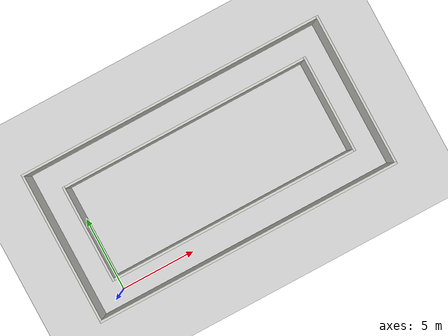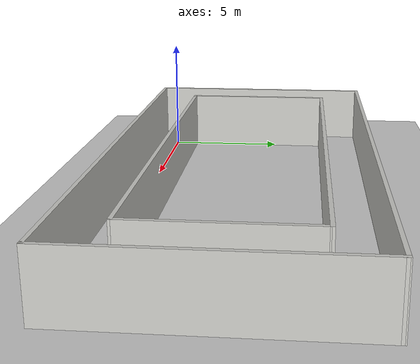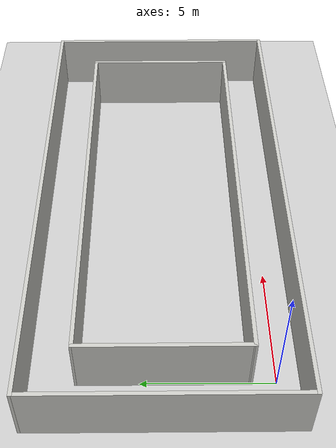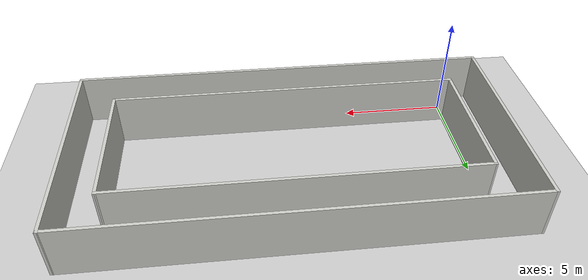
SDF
<sdf version="1.6">
 <world name="default">
  <model name="ground_plane">
   <static>1</static>
   <link name="link">
    <collision name="collision">
     <geometry><plane><normal>0 0 1</normal><size>100 100</size></plane></geometry>
     <surface><friction><ode><mu>100</mu><mu2>50</mu2></ode></friction></surface>
    </collision>
    <visual name="visual">
     <cast_shadows>0</cast_shadows>
     <geometry><plane><normal>0 0 1</normal><size>100 100</size></plane></geometry>
     <material>
      <script><uri>file://media/materials/scripts/gazebo.material</uri><name>Gazebo/Grey</name></script>
     </material>
    </visual>
   </link>
  </model>
  <model name="loop1">
   <pose>8.35144 4.113 0 0 -0 0</pose>
   <link name="Wall_15">
    <collision name="Wall_15_Collision">
     <geometry><box><size>20.5 0.15 2.5</size></box></geometry>
     <pose>0 0 1.25 0 -0 0</pose>
    </collision>
    <visual name="Wall_15_Visual">
     <pose>0 0 1.25 0 -0 0</pose>
     <geometry><box><size>20.5 0.15 2.5</size></box></geometry>
     <material>
      <script><uri>file://media/materials/scripts/gazebo.material</uri><name>Gazebo/CeilingTiled</name></script>
      <ambient>1 1 1 1</ambient>
     </material>
    </visual>
    <pose>0 -5.05002 0 0 -0 0</pose>
   </link>
   <link name="Wall_16">
    <collision name="Wall_16_Collision">
     <geometry><box><size>10.25 0.15 2.5</size></box></geometry>
     <pose>0 0 1.25 0 -0 0</pose>
    </collision>
    <visual name="Wall_16_Visual">
     <pose>0 0 1.25 0 -0 0</pose>
     <geometry><box><size>10.25 0.15 2.5</size></box></geometry>
     <material>
      <script><uri>file://media/materials/scripts/gazebo.material</uri><name>Gazebo/CeilingTiled</name></script>
      <ambient>1 1 1 1</ambient>
     </material>
    </visual>
    <pose>10.175 -1.9e-05 0 0 -0 1.5708</pose>
   </link>
   <link name="Wall_17">
    <collision name="Wall_17_Collision">
     <geometry><box><size>20.5 0.15 2.5</size></box></geometry>
     <pose>0 0 1.25 0 -0 0</pose>
    </collision>
    <visual name="Wall_17_Visual">
     <pose>0 0 1.25 0 -0 0</pose>
     <geometry><box><size>20.5 0.15 2.5</size></box></geometry>
     <material>
      <script><uri>file://media/materials/scripts/gazebo.material</uri><name>Gazebo/CeilingTiled</name></script>
      <ambient>1 1 1 1</ambient>
     </material>
    </visual>
    <pose>0 5.04468 0 0 0 -3.14107</pose>
   </link>
   <link name="Wall_26">
    <collision name="Wall_26_Collision">
     <geometry><box><size>6.5 0.15 2.5</size></box></geometry>
     <pose>0 0 1.25 0 -0 0</pose>
    </collision>
    <visual name="Wall_26_Visual">
     <pose>0 0 1.25 0 -0 0</pose>
     <geometry><box><size>6.5 0.15 2.5</size></box></geometry>
     <material>
      <script><uri>file://media/materials/scripts/gazebo.material</uri><name>Gazebo/CeilingTiled</name></script>
      <ambient>1 1 1 1</ambient>
     </material>
    </visual>
    <pose>-8.325 0.014383 0 0 0 -1.5708</pose>
   </link>
   <link name="Wall_3">
    <collision name="Wall_3_Collision">
     <geometry><box><size>10.2394 0.15 2.5</size></box></geometry>
     <pose>0 0 1.25 0 -0 0</pose>
    </collision>
    <visual name="Wall_3_Visual">
     <pose>0 0 1.25 0 -0 0</pose>
     <geometry><box><size>10.2394 0.15 2.5</size></box></geometry>
     <material>
      <script><uri>file://media/materials/scripts/gazebo.material</uri><name>Gazebo/CeilingTiled</name></script>
      <ambient>1 1 1 1</ambient>
     </material>
    </visual>
    <pose>-10.175 -0.005318 0 0 0 -1.5708</pose>
   </link>
   <link name="Wall_30">
    <collision name="Wall_30_Collision">
     <geometry><box><size>6.5 0.15 2.5</size></box></geometry>
     <pose>0 0 1.25 0 -0 0</pose>
    </collision>
    <visual name="Wall_30_Visual">
     <pose>0 0 1.25 0 -0 0</pose>
     <geometry><box><size>6.5 0.15 2.5</size></box></geometry>
     <material>
      <script><uri>file://media/materials/scripts/gazebo.material</uri><name>Gazebo/CeilingTiled</name></script>
      <ambient>1 1 1 1</ambient>
     </material>
    </visual>
    <pose>8.325 0.024981 0 0 0 -1.5708</pose>
   </link>
   <link name="Wall_31">
    <collision name="Wall_31_Collision">
     <geometry><box><size>16.8 0.15 2.5</size></box></geometry>
     <pose>0 0 1.25 0 -0 0</pose>
    </collision>
    <visual name="Wall_31_Visual">
     <pose>0 0 1.25 0 -0 0</pose>
     <geometry><box><size>16.8 0.15 2.5</size></box></geometry>
     <material>
      <script><uri>file://media/materials/scripts/gazebo.material</uri><name>Gazebo/CeilingTiled</name></script>
      <ambient>1 1 1 1</ambient>
     </material>
    </visual>
    <pose>0 -3.15532 0 0 0 -3.14096</pose>
   </link>
   <link name="Wall_33">
    <collision name="Wall_33_Collision">
     <geometry><box><size>16.8 0.15 2.5</size></box></geometry>
     <pose>0 0 1.25 0 -0 0</pose>
    </collision>
    <visual name="Wall_33_Visual">
     <pose>0 0 1.25 0 -0 0</pose>
     <geometry><box><size>16.8 0.15 2.5</size></box></geometry>
     <material>
      <script><uri>file://media/materials/scripts/gazebo.material</uri><name>Gazebo/CeilingTiled</name></script>
      <ambient>1 1 1 1</ambient>
     </material>
    </visual>
    <pose>0 3.19468 0 0 -0 0.000637</pose>
   </link>
   <static>1</static>
  </model>
 </world>
</sdf>
